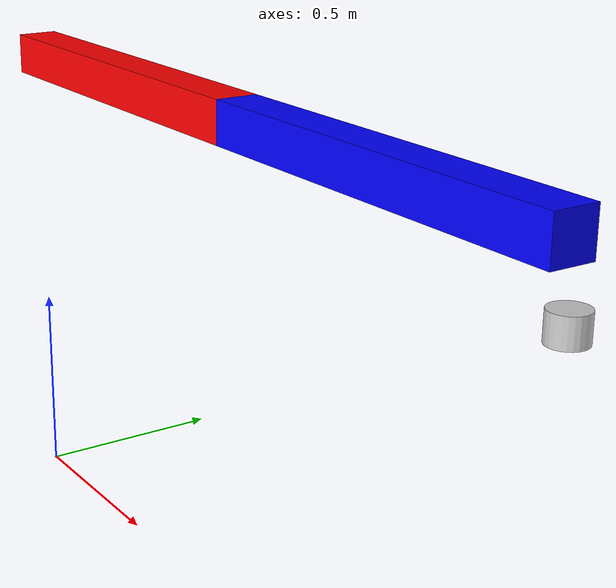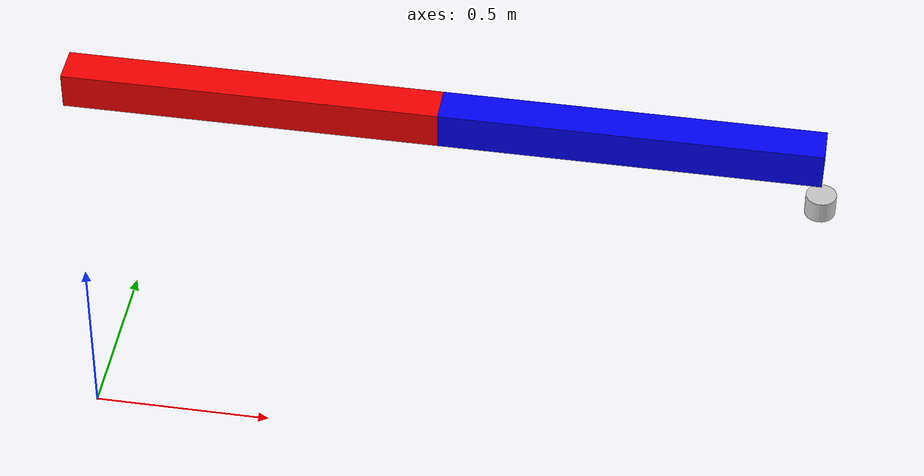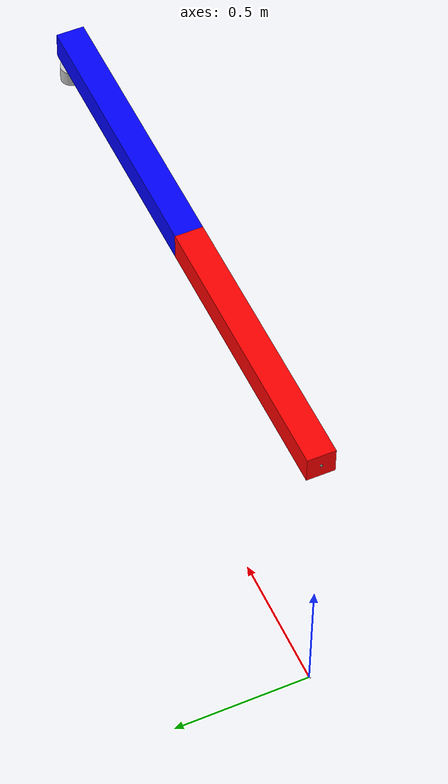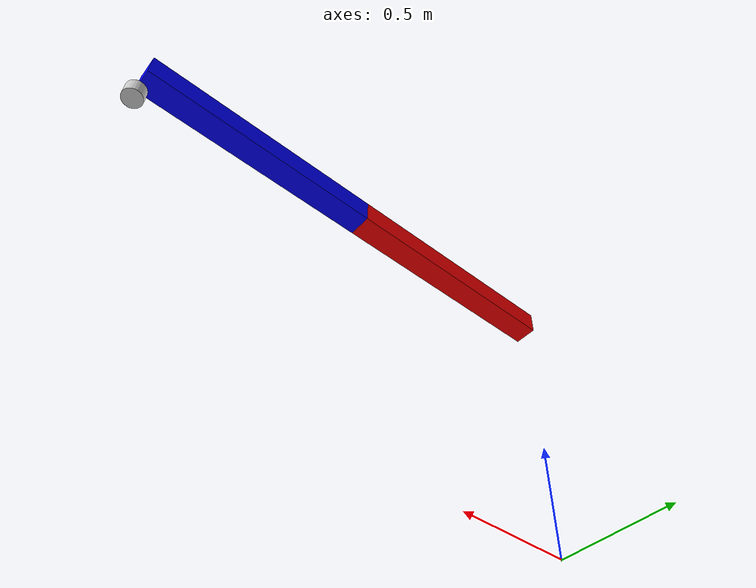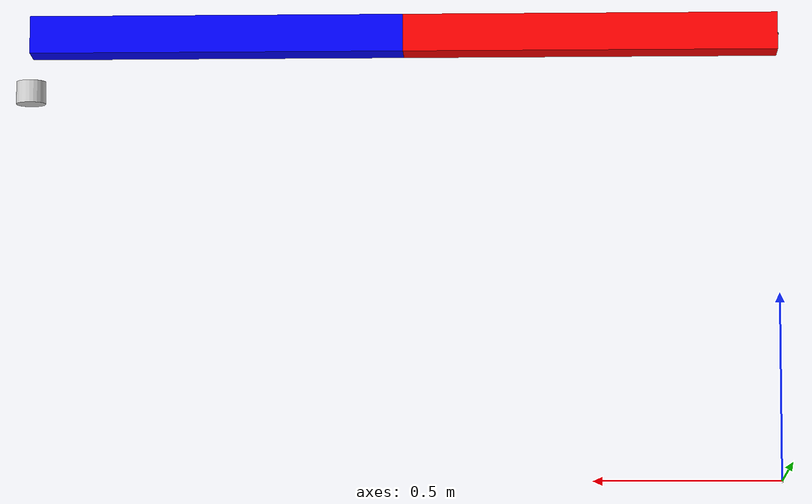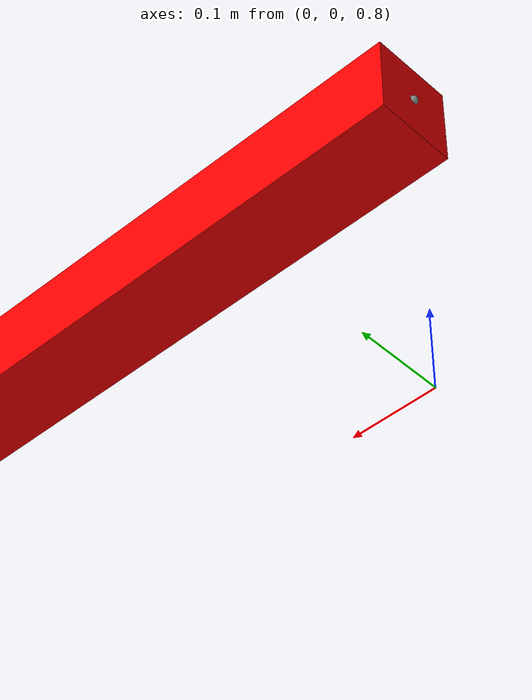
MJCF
<?xml version="1.0" encoding="UTF-8"?>
<mujoco model="vacuum_gripper_robot">
  <compiler fusestatic="false" angle="radian"/>
  <worldbody>
    <body name="upperarm" pos="0 0 1.2">
      <inertial pos="0.5 0 0" mass="27" diaginertia="0.225 0.225 0.0225"/>
      <joint name="joint1" pos="0 0 0" axis="0 1 0" range="-3.14 3.14" actuatorfrcrange="-1000 1000"
             frictionloss="1.0" damping="2.0"/>
      <geom size="0.5 0.05 0.05" pos="0.5 0 0" type="box" rgba="1 0 0 1"/>
      <body name="forearm" pos="1 0 0" gravcomp="1.0">
        <inertial pos="0.5 0 0" mass="27" diaginertia="0.225 0.225 0.0225"/>
        <joint name="joint2" pos="0 0 0" axis="0 1 0" range="-3.14 3.14" actuatorfrcrange="-1000 1000"
               damping="2.0"/>
        <geom size="0.5 0.05 0.05" pos="0.5 0 0" type="box" rgba="0 0 1 1"/>
        <body name="vacuum_pad" pos="1.0 0 -0.15">
          <inertial pos="0 0 0" mass="0.5" diaginertia="0.001 0.001 0.001"/>
          <geom type="cylinder" size="0.04 0.03" rgba="0.8 0.8 0.8 1"/>
        </body>
        <site name="forearm" pos="0 0 0" quat="1.0 0 0 0"/>
      </body>
      <site name="upperarm" pos="0 0 0" quat="1.0 0 0 0"/>
    </body>
    <site name="world" pos="0 0 0" quat="1.0 0 0 0"/>
    <site name="base" pos="0 0 1.2" quat="1.0 0 0 0"/>
  </worldbody>
  <option integrator="implicitfast"/>
  <actuator>
    <position name="joint1" joint="joint1" kp="25000" dampratio="1.0" ctrlrange="-3.14159 3.14159"/>
    <position name="joint2" joint="joint2" kp="25000" dampratio="1.0" ctrlrange="-3.14159 3.14159"/>
  </actuator>
</mujoco>
